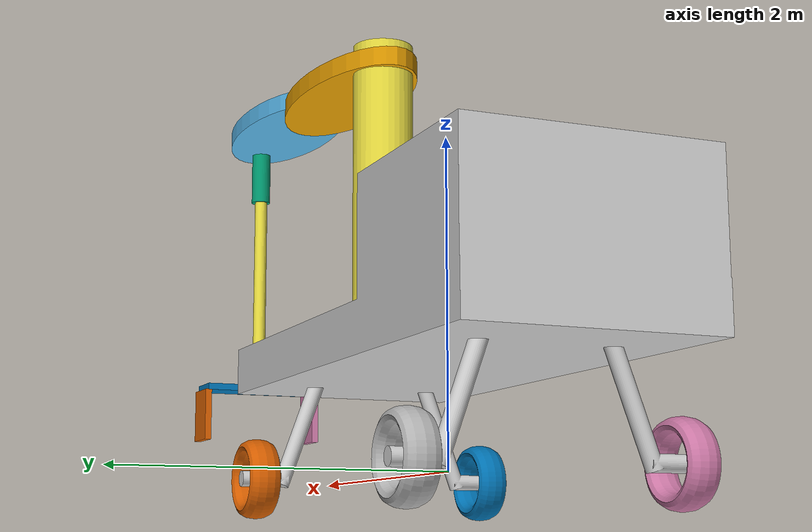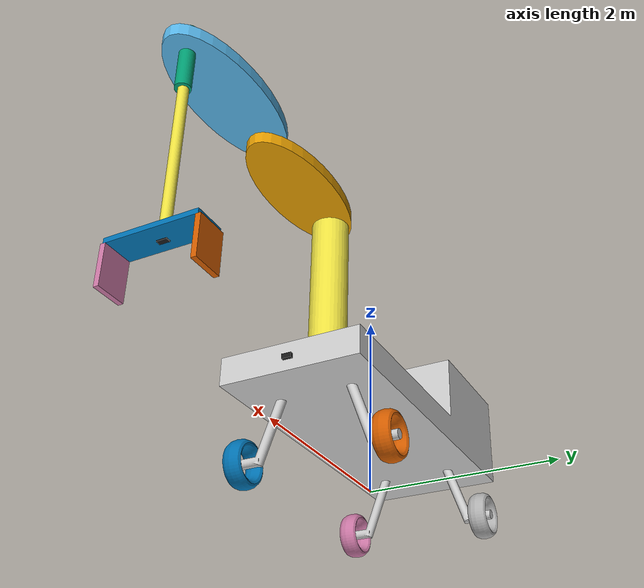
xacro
<?xml version="1.0"?>
<!-- Rover description - archivo raiz del robot -->
<robot name="rover" xmlns:xacro="http://wiki.ros.org/xacro">

  <xacro:arg name="prefix" default=""/>
  <xacro:arg name="robot_ns" default=""/>
  <xacro:arg name="config_controllers" default="$(find rover_description)/config/rover_controllers.yaml"/>
  <xacro:arg name="update_rate" default="100"/>

  <!-- Utilidades (macros de inercia) -->
  <xacro:include filename="$(find rover_description)/urdf/utils/utils.urdf.xacro"/>

  <!-- Base (base_footprint -> base_link -> pedestal_link) -->
  <xacro:include filename="$(find rover_description)/urdf/base/robot_base.urdf.xacro"/>

  <!-- Ruedas -->
  <xacro:include filename="$(find rover_description)/urdf/wheels/rover_wheels.urdf.xacro"/>

  <xacro:rover_wheel prefix="front_right" x_pos="1.20032" y_pos="-0.78480" mesh_file="Torus.001.dae"/>
  <xacro:rover_wheel prefix="front_left"  x_pos="1.20032" y_pos="0.78480"  mesh_file="Torus.dae"/>

  <xacro:rover_wheel prefix="back_right" x_pos="-1.20032" y_pos="-0.78480" mesh_file="Torus.002.dae"/>
  <xacro:rover_wheel prefix="back_left"  x_pos="-1.20032" y_pos="0.78480"  mesh_file="Torus.003.dae"/>

  <!-- Brazo SCARA -->
  <xacro:include filename="$(find rover_description)/urdf/arm/scara.urdf.xacro"/>

  <!-- Gripper -->
  <xacro:include filename="$(find rover_description)/urdf/arm/gripper.urdf.xacro"/>

  <!-- Sensores (IMU + camaras) -->
  <xacro:include filename="$(find rover_description)/urdf/sensors/sensors.urdf.xacro"/>
  <xacro:rover_sensors prefix="$(arg prefix)"/>

  <!-- ROS 2 Control -->
  <xacro:include filename="$(find rover_description)/urdf/ros2_control.urdf.xacro"/>
  <xacro:ros2_control/>

</robot>

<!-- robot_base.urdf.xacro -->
<robot xmlns:xacro="http://wiki.ros.org/xacro">

  <xacro:include filename="$(find rover_description)/urdf/utils/utils.urdf.xacro"/>

  <link name="base_footprint"/>

  <joint name="base_footprint_joint" type="fixed">
    <origin xyz="0 0 0.73272" rpy="0 0 0"/>
    <parent link="base_footprint"/>
    <child  link="base_link"/>
  </joint>

  <link name="base_link"/>

  <joint name="base_to_chassis_joint" type="fixed">
    <origin xyz="0 0 0" rpy="0 0 -1.5708"/>
    <parent link="base_link"/>
    <child  link="chassis_link"/>
  </joint>

  <link name="chassis_link">
    <visual name="Base">
      <material name="Material">
        <color rgba="0.8 0.8 0.8 1.0"/>
      </material>
      <origin xyz="0 0 0" rpy="0 0 0"/>
      <geometry>
        <mesh filename="package://rover_description/meshes/dae/Cylinder.011.dae" scale="1 1 1"/>
      </geometry>
    </visual>

    <collision name="Base_collision">
      <origin xyz="0 0 -0.06251" rpy="0 0 0"/>
      <geometry>
        <box size="1.5 3.5 0.45"/>
      </geometry>
    </collision>
    <collision name="Base_collision_front_wall">
      <origin xyz="0 -0.47508 0.51045" rpy="0 0 0"/>
      <geometry><box size="1.5 0.05 0.70"/></geometry>
    </collision>
    <collision name="Base_collision_rear_wall">
      <origin xyz="0 -1.72 0.51045" rpy="0 0 0"/>
      <geometry><box size="1.5 0.05 0.70"/></geometry>
    </collision>
    <collision name="Base_collision_left_wall">
      <origin xyz="-0.725 -1.1 0.51045" rpy="0 0 1.5708"/>
      <geometry><box size="1.2 0.05 0.70"/></geometry>
    </collision>
    <collision name="Base_collision_right_wall">
      <origin xyz="0.725 -1.1 0.51045" rpy="0 0 1.5708"/>
      <geometry><box size="1.2 0.05 0.70"/></geometry>
    </collision>

    <inertial>
      <origin xyz="0 -0.11566 0.05374" rpy="0 0 0"/>
      <mass value="70.0"/>
      <inertia ixx="93.95663" ixy="-0.00000" ixz="0.00000"
               iyy="39.45127" iyz="22.95778"
               izz="78.82027"/>
    </inertial>
  </link>

  <joint name="pedestal_link_joint" type="fixed">
    <origin xyz="0 1.0 0.16045" rpy="0 0 0"/>
    <parent link="chassis_link"/>
    <child  link="pedestal_link"/>
  </joint>

  <link name="pedestal_link">
    <visual name="pedestal">
      <material name="None"/>
      <origin xyz="0 0 0" rpy="0 0 0"/>
      <geometry>
        <mesh filename="package://rover_description/meshes/dae/Cylinder.dae" scale="1 1 1"/>
      </geometry>
    </visual>
    <collision name="pedestal_collision">
      <origin xyz="0 0 1.00088" rpy="0 0 0"/>
      <geometry>
        <cylinder radius="0.2" length="2.0"/>
      </geometry>
    </collision>
    <inertial>
      <origin xyz="0 0 1.0" rpy="0 0 0"/>
      <mass value="5.0"/>
      <inertia ixx="1.71635" ixy="0" ixz="0"
               iyy="1.71635" iyz="0"
               izz="0.09936"/>
    </inertial>
  </link>

</robot>

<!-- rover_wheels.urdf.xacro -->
<robot xmlns:xacro="http://wiki.ros.org/xacro">

  <xacro:macro name="rover_wheel" params="prefix x_pos y_pos mesh_file">

    <joint name="${prefix}_wheel_joint" type="continuous">
      <origin xyz="${x_pos} ${y_pos} -0.73272" rpy="0 -1.5708 -1.5708"/>
      <parent link="base_link"/>
      <child  link="${prefix}_wheel_link"/>
      <axis xyz="0 0 1"/>
      <limit effort="1000.0" velocity="100.0"/>
    </joint>

    <link name="${prefix}_wheel_link">
      <visual name="${prefix}_wheel">
        <material name="None"/>
        <origin xyz="0 0 0" rpy="3.14159 0 3.14159"/>
        <geometry>
          <mesh filename="package://rover_description/meshes/dae/${mesh_file}" scale="0.2 0.2 0.4"/>
        </geometry>
      </visual>
      <collision name="${prefix}_wheel_collision">
        <origin xyz="0 0 0" rpy="3.14159 0 3.14159"/>
        <geometry>
          <mesh filename="package://rover_description/meshes/dae/${mesh_file}" scale="0.2 0.2 0.4"/>
        </geometry>
      </collision>
      <inertial>
        <origin xyz="0 0 0" rpy="0 0 0"/>
        <mass value="2.0"/>
        <inertia ixx="0.05865" ixy="0" ixz="0"
                 iyy="0.03326" iyz="0"
                 izz="0.03326"/>
      </inertial>
    </link>

  </xacro:macro>

</robot>

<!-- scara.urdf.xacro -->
<robot xmlns:xacro="http://wiki.ros.org/xacro">

  <!-- BRAZO SCARA  (eslabones brazo1 y brazo2 + soporte gripper)
       Padre del primer eslabon: pedestal_link  (definido en base) -->

  <!-- Eslabon 1 (giro Z, rotacion horizontal) -->
  <joint name="joint_0" type="revolute">
    <origin xyz="0 -0.02427 1.86892" rpy="0 0 0"/>
    <parent link="pedestal_link"/>
    <child  link="brazo1_link"/>
    <axis xyz="0 0 1"/>
    <limit lower="-6.28" upper="6.28" effort="1000.0" velocity="100.0"/>
  </joint>

  <link name="brazo1_link">
    <visual name="brazo1">
      <material name="None"/>
      <origin xyz="0 0 0" rpy="0 0 0"/>
      <geometry>
        <mesh filename="package://rover_description/meshes/dae/Cylinder.001.dae"
              scale="1 1 1"/>
      </geometry>
    </visual>
    <collision name="brazo1_collision">
      <origin xyz="0 0.663 0" rpy="0 0 0"/>
      <geometry><box size="0.15 1.33 0.15"/></geometry>
    </collision>
    <inertial>
      <origin xyz="0 0.67590 0" rpy="0 0 0"/>
      <mass value="3.0"/>
      <inertia ixx="0.60756" ixy="0" ixz="0"
               iyy="0.10387" iyz="0"
               izz="0.70353"/>
    </inertial>
  </link>

  <!-- Eslabon 2 (giro Z, rotacion horizontal) -->
  <joint name="joint_1" type="revolute">
    <origin xyz="0 1.32604 0.12417" rpy="0 0 0"/>
    <parent link="brazo1_link"/>
    <child  link="brazo2_link"/>
    <axis xyz="0 0 1"/>
    <limit lower="-2.5" upper="2.5" effort="1000.0" velocity="100.0"/>
  </joint>

  <link name="brazo2_link">
    <visual name="brazo2">
      <material name="None"/>
      <origin xyz="0 0 0" rpy="0 0 0"/>
      <geometry>
        <mesh filename="package://rover_description/meshes/dae/Cylinder.002.dae"
              scale="1 1 1"/>
      </geometry>
    </visual>
    <collision name="brazo2_collision">
      <origin xyz="0 0.686 0" rpy="0 0 0"/>
      <geometry><box size="0.15 1.37 0.15"/></geometry>
    </collision>
    <inertial>
      <origin xyz="0 0.73617 0" rpy="0 0 0"/>
      <mass value="2.0"/>
      <inertia ixx="0.40504" ixy="0" ixz="0"
               iyy="0.06925" iyz="0"
               izz="0.46902"/>
    </inertial>
  </link>

  <!-- Rotacion del gripper (giro Z) -->
  <joint name="joint_2" type="revolute">
    <origin xyz="0 1.37257 0" rpy="0 0 0"/>
    <parent link="brazo2_link"/>
    <child  link="gripper_rot_link"/>
    <axis xyz="0 0 1"/>
    <limit lower="-2.5" upper="2.5" effort="1000.0" velocity="100.0"/>
  </joint>

  <link name="gripper_rot_link">
    <visual name="gripper_rot">
      <material name="None"/>
      <origin xyz="0 0 0" rpy="0 0 0"/>
      <geometry>
        <mesh filename="package://rover_description/meshes/dae/Cylinder.003.dae"
              scale="1 1 0.23333"/>
      </geometry>
    </visual>
    <collision name="gripper_rot_collision">
      <origin xyz="0 0.00318 -0.11670" rpy="0 0 0"/>
      <geometry>
        <cylinder radius="0.075" length="0.70"/>
      </geometry>
    </collision>
    <inertial>
      <origin xyz="0 0.01050 -0.51237" rpy="0 0 0"/>
      <mass value="1.01"/>
      <inertia ixx="0.75240" ixy="0" ixz="0"
               iyy="0.75240" iyz="0.00060"
               izz="0.00379"/>
    </inertial>
  </link>

  <!-- Traslacion del gripper (prismatica Z) -->
  <joint name="joint_3" type="prismatic">
    <origin xyz="0 0 0" rpy="0 0 0"/>
    <parent link="gripper_rot_link"/>
    <child  link="gripper_tras_link"/>
    <axis xyz="0 0 1"/>
    <limit lower="-0.40" upper="1.70" effort="1000.0" velocity="100.0"/>
  </joint>

  <link name="gripper_tras_link">
    <visual name="Cylinder">
      <material name="None"/>
      <origin xyz="0 0 -1.02339" rpy="0 0 0"/>
      <geometry>
        <mesh filename="package://rover_description/meshes/dae/Cylinder.006.dae"
              scale="1 1 1"/>
      </geometry>
    </visual>
    <collision name="Cylinder_collision">
      <origin xyz="0 0 -1.02339" rpy="0 0 0"/>
      <geometry>
        <mesh filename="package://rover_description/meshes/dae/Cylinder.006.dae"
              scale="1 1 1"/>
      </geometry>
    </collision>
    <inertial>
      <origin xyz="0 0 -1.02339" rpy="0 0 0"/>
      <mass value="1.0"/>
      <inertia ixx="0.08" ixy="0" ixz="0"
               iyy="0.08" iyz="0"
               izz="0.002"/>
    </inertial>
  </link>

</robot>

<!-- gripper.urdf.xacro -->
<robot xmlns:xacro="http://wiki.ros.org/xacro">

  <!-- GRIPPER  (base fija + 2 dedos prismaticos)
       Padre: gripper_tras_link  (definido en scara.urdf.xacro) -->

  <!-- Base del gripper -->
  <joint name="gripper_base_link_joint" type="fixed">
    <origin xyz="0 0.02566 -2.01390" rpy="0 0 0"/>
    <parent link="gripper_tras_link"/>
    <child  link="gripper_base_link"/>
  </joint>

  <link name="gripper_base_link">
    <visual name="gripper_base">
      <material name="None"/>
      <origin xyz="0 0 0" rpy="0 0 0"/>
      <geometry>
        <mesh filename="package://rover_description/meshes/dae/Cube.007.dae"
              scale="1 1 1"/>
      </geometry>
    </visual>
    <collision name="gripper_base_collision">
      <origin xyz="0 0 -0.02801" rpy="0 0 0"/>
      <geometry>
        <box size="0.90 0.30 0.05"/>
      </geometry>
    </collision>
    <inertial>
      <origin xyz="0 0 -0.025" rpy="0 0 0"/>
      <mass value="0.5"/>
      <inertia ixx="0.00385" ixy="0" ixz="0"
               iyy="0.03385" iyz="0"
               izz="0.03750"/>
    </inertial>
  </link>

  <!-- Dedo izquierdo (prismatico, se mueve en X+) -->
  <joint name="joint_left_finger" type="prismatic">
    <origin xyz="-0.45 0 -0.04818" rpy="0 0 0"/>
    <parent link="gripper_base_link"/>
    <child  link="left_finger_link"/>
    <axis xyz="1 0 0"/>
    <limit lower="0.0" upper="0.20" effort="1000.0" velocity="100.0"/>
  </joint>

  <link name="left_finger_link">
    <visual name="dedo1">
      <material name="None"/>
      <origin xyz="0 0 0" rpy="0 0 0"/>
      <geometry>
        <mesh filename="package://rover_description/meshes/dae/Cube.006.dae"
              scale="1 1 1"/>
      </geometry>
    </visual>
    <collision name="dedo1_collision">
      <origin xyz="0 0 -0.20810" rpy="0 0 0"/>
      <geometry>
        <box size="0.05 0.30 0.40"/>
      </geometry>
    </collision>
    <inertial>
      <origin xyz="0 0 -0.20" rpy="0 0 0"/>
      <mass value="0.20"/>
      <inertia ixx="0.00417" ixy="0" ixz="0"
               iyy="0.00271" iyz="0"
               izz="0.00154"/>
    </inertial>
  </link>

  <!-- Dedo derecho (prismatico, se mueve en X-) -->
  <joint name="joint_right_finger" type="prismatic">
    <origin xyz="0.45 0 -0.04818" rpy="0 0 0"/>
    <parent link="gripper_base_link"/>
    <child  link="right_finger_link"/>
    <axis xyz="1 0 0"/>
    <limit lower="-0.20" upper="0.0" effort="1000.0" velocity="100.0"/>
  </joint>

  <link name="right_finger_link">
    <visual name="dedo2">
      <material name="None"/>
      <origin xyz="0 0 0" rpy="0 0 0"/>
      <geometry>
        <mesh filename="package://rover_description/meshes/dae/Cube.008.dae"
              scale="1 1 1"/>
      </geometry>
    </visual>
    <collision name="dedo2_collision">
      <origin xyz="0 0 -0.20659" rpy="0 0 0"/>
      <geometry>
        <box size="0.05 0.30 0.40"/>
      </geometry>
    </collision>
    <inertial>
      <origin xyz="0 0 -0.20" rpy="0 0 0"/>
      <mass value="0.20"/>
      <inertia ixx="0.00417" ixy="0" ixz="0"
               iyy="0.00271" iyz="0"
               izz="0.00154"/>
    </inertial>
  </link>

</robot>

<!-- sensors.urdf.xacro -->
<robot xmlns:xacro="http://wiki.ros.org/xacro">

  <xacro:include filename="$(find rover_description)/urdf/sensors/imu_sensor.urdf.xacro"/>
  <xacro:include filename="$(find rover_description)/urdf/sensors/camera.urdf.xacro"/>

  <xacro:macro name="rover_sensors" params="prefix">

      <xacro:imu_sensor
          prefix="${prefix}base_"
          parent="${prefix}base_link"
          topic="/${prefix}imu">
          <origin xyz="0 0 0" rpy="0 0 0"/>
      </xacro:imu_sensor>

      <xacro:camera_sensor
          prefix="${prefix}front_camera_"
          parent="${prefix}base_link"
          horizontal_fov="90"
          video_width="640"
          video_height="480">
        <origin xyz="1.76 0 0.0" rpy="0 0 0"/>
      </xacro:camera_sensor>

      <xacro:camera_sensor
          prefix="${prefix}arm_camera_"
          parent="${prefix}gripper_tras_link"
          horizontal_fov="90"
          video_width="640"
          video_height="480">
        <origin xyz="0 0 -2.05" rpy="0 ${pi/2} ${pi/2}"/>
      </xacro:camera_sensor>

  </xacro:macro>

</robot>

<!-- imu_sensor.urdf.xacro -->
<robot xmlns:xacro="http://www.ros.org/wiki/xacro">

    <xacro:macro name="imu_sensor" params="prefix parent topic *origin">

        <link name="${prefix}imu_link"/>

        <joint name="${prefix}imu_joint" type="fixed">
            <parent link="${parent}"/>
            <child link="${prefix}imu_link"/>
            <xacro:insert_block name="origin"/>
        </joint>

        <gazebo reference="${prefix}imu_link">
            <sensor name="${prefix}imu_sensor" type="imu">
                <always_on>1</always_on>
                <update_rate>30</update_rate>
                <topic>${topic}</topic>
            </sensor>
        </gazebo>

    </xacro:macro>

</robot>

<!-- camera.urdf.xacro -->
<robot xmlns:xacro="http://www.ros.org/wiki/xacro">

    <xacro:macro name="camera_sensor"
        params="prefix parent horizontal_fov:=90 video_width:=640 video_height:=480 *origin">

        <link name="${prefix}link">
            <visual>
                <origin xyz="0 0 0" rpy="0 0 0"/>
                <geometry>
                    <box size="0.05 0.10 0.05"/>
                </geometry>
                <material name="${prefix}color">
                    <color rgba="0.1 0.1 0.1 1.0"/>
                </material>
            </visual>
            <inertial>
                <origin xyz="0 0 0" rpy="0 0 0"/>
                <mass value="0.05"/>
                <inertia ixx="0.00001" ixy="0" ixz="0" iyy="0.00001" iyz="0" izz="0.00001"/>
            </inertial>
        </link>

        <joint name="${prefix}joint" type="fixed">
            <parent link="${parent}"/>
            <child link="${prefix}link"/>
            <xacro:insert_block name="origin"/>
        </joint>

        <link name="${prefix}optical_frame"/>

        <joint name="${prefix}optical_joint" type="fixed">
            <parent link="${prefix}link"/>
            <child link="${prefix}optical_frame"/>
            <origin xyz="0 0 0" rpy="-1.57080 0 -1.57080"/>
        </joint>

        <gazebo reference="${prefix}link">
            <sensor name="${prefix}sensor" type="camera">
                <visualize>true</visualize>
                <update_rate>30</update_rate>
                <topic>/${prefix}image</topic>
                <camera>
                    <horizontal_fov>${radians(float(horizontal_fov))}</horizontal_fov>
                    <image>
                        <width>${video_width}</width>
                        <height>${video_height}</height>
                        <format>R8G8B8</format>
                    </image>
                    <clip>
                        <near>0.10</near>
                        <far>15.0</far>
                    </clip>
                    <noise>
                        <type>gaussian</type>
                        <mean>0.0</mean>
                        <stddev>0.007</stddev>
                    </noise>
                    <optical_frame_id>${prefix}optical_frame</optical_frame_id>
                </camera>
            </sensor>
        </gazebo>

    </xacro:macro>

</robot>
